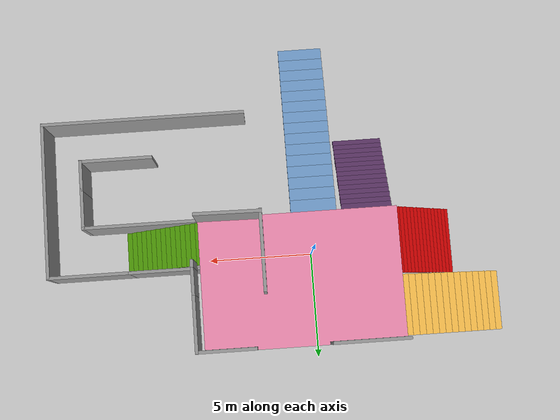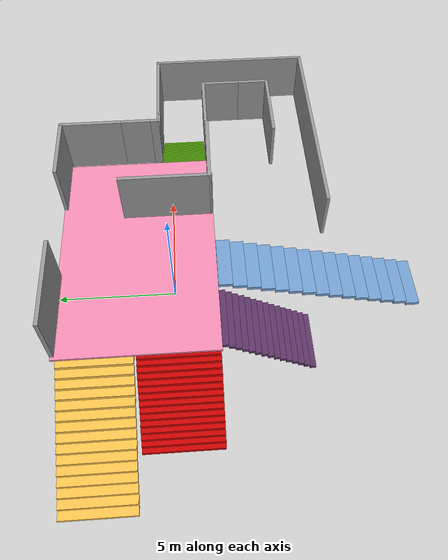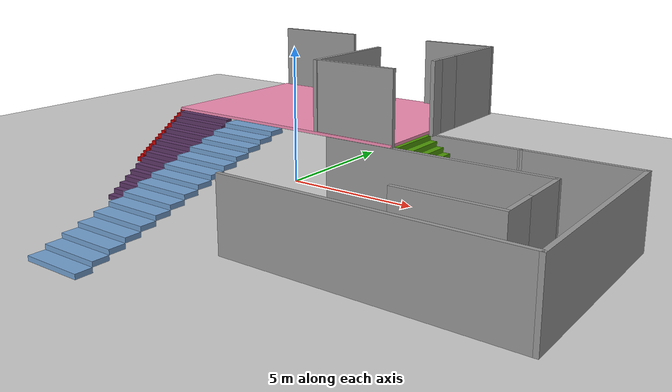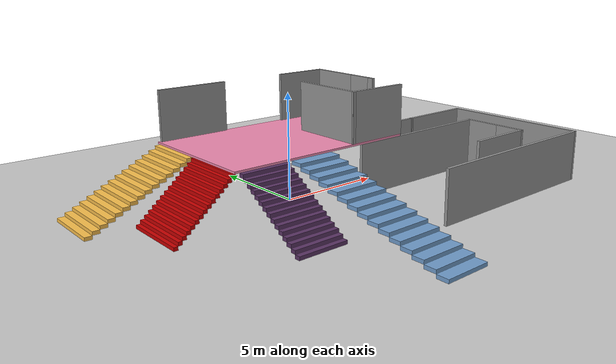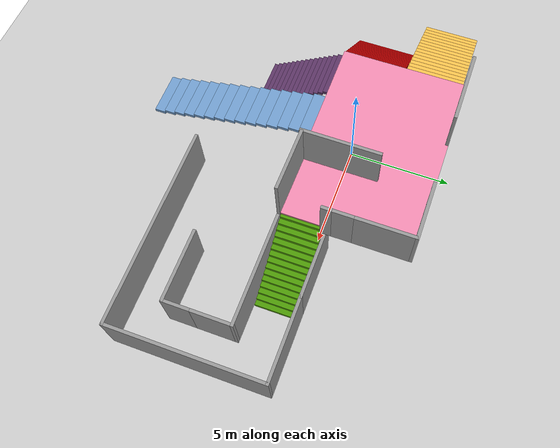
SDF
<sdf version="1.6">
 <world name="default">
  <model name="ground_plane">
   <static>1</static>
   <link name="link">
    <collision name="collision">
     <geometry><plane><normal>0 0 1</normal><size>100 100</size></plane></geometry>
     <surface>
      <contact><collide_bitmask>65535</collide_bitmask></contact>
      <friction><ode><mu>100</mu><mu2>50</mu2></ode></friction>
     </surface>
    </collision>
    <visual name="visual">
     <cast_shadows>0</cast_shadows>
     <geometry><plane><normal>0 0 1</normal><size>100 100</size></plane></geometry>
     <material>
      <script><uri>file://media/materials/scripts/gazebo.material</uri><name>Gazebo/Grey</name></script>
     </material>
    </visual>
   </link>
  </model>
  <model name="stair_test_arena">
   <static>true</static>
   <pose>1.77029 -2.96555 0 0 -0 0</pose>
   <link name="Floor_0">
    <pose>-0.944783 4.29451 2.5 0 -0 0</pose>
    <visual name="Floor_0_Visual_0">
     <pose>-0.2 0 0.05 0 -0 0</pose>
     <geometry><box><size>9.4393 6.29101 0.1</size></box></geometry>
     <material>
      <script><uri>file://media/materials/scripts/gazebo.material</uri><name>Gazebo/Pink</name></script>
      <ambient>0.305882 0.603922 0.0235294 1</ambient>
     </material>
     <meta><layer>1</layer></meta>
    </visual>
    <collision name="Floor_0_Collision_0">
     <geometry><box><size>9.4393 6.29101 0.1</size></box></geometry>
    </collision>
   </link>
   <link name="Stairs_0">
    <visual name="Stairs_0_Visual_0">
     <pose>7.09392 2.32468 0.083333 0 -0 -1.5708</pose>
     <geometry><box><size>2 0.25 0.166667</size></box></geometry>
     <material>
      <script><uri>file://media/materials/scripts/gazebo.material</uri><name>Gazebo/Grey</name></script>
      <ambient>0.305882 0.603922 0.0235294 1</ambient>
     </material>
     <meta><layer>0</layer></meta>
    </visual>
    <collision name="Stairs_0_Collision_0">
     <geometry><box><size>2 0.25 0.166667</size></box></geometry>
     <pose>7.09392 2.32468 0.083333 0 -0 -1.5708</pose>
    </collision>
    <visual name="Stairs_0_Visual_1">
     <pose>6.84392 2.32468 0.25 0 -0 -1.5708</pose>
     <geometry><box><size>2 0.25 0.166667</size></box></geometry>
     <material>
      <script><uri>file://media/materials/scripts/gazebo.material</uri><name>Gazebo/Grey</name></script>
      <ambient>0.305882 0.603922 0.0235294 1</ambient>
     </material>
     <meta><layer>0</layer></meta>
    </visual>
    <collision name="Stairs_0_Collision_1">
     <geometry><box><size>2 0.25 0.166667</size></box></geometry>
     <pose>6.84392 2.32468 0.25 0 -0 -1.5708</pose>
    </collision>
    <visual name="Stairs_0_Visual_2">
     <pose>6.59392 2.32468 0.416667 0 -0 -1.5708</pose>
     <geometry><box><size>2 0.25 0.166667</size></box></geometry>
     <material>
      <script><uri>file://media/materials/scripts/gazebo.material</uri><name>Gazebo/Grey</name></script>
      <ambient>0.305882 0.603922 0.0235294 1</ambient>
     </material>
     <meta><layer>0</layer></meta>
    </visual>
    <collision name="Stairs_0_Collision_2">
     <geometry><box><size>2 0.25 0.166667</size></box></geometry>
     <pose>6.59392 2.32468 0.416667 0 -0 -1.5708</pose>
    </collision>
    <visual name="Stairs_0_Visual_3">
     <pose>6.34392 2.32468 0.583333 0 -0 -1.5708</pose>
     <geometry><box><size>2 0.25 0.166667</size></box></geometry>
     <material>
      <script><uri>file://media/materials/scripts/gazebo.material</uri><name>Gazebo/Grey</name></script>
      <ambient>0.305882 0.603922 0.0235294 1</ambient>
     </material>
     <meta><layer>0</layer></meta>
    </visual>
    <collision name="Stairs_0_Collision_3">
     <geometry><box><size>2 0.25 0.166667</size></box></geometry>
     <pose>6.34392 2.32468 0.583333 0 -0 -1.5708</pose>
    </collision>
    <visual name="Stairs_0_Visual_4">
     <pose>6.09392 2.32468 0.75 0 -0 -1.5708</pose>
     <geometry><box><size>2 0.25 0.166667</size></box></geometry>
     <material>
      <script><uri>file://media/materials/scripts/gazebo.material</uri><name>Gazebo/Grey</name></script>
      <ambient>0.305882 0.603922 0.0235294 1</ambient>
     </material>
     <meta><layer>0</layer></meta>
    </visual>
    <collision name="Stairs_0_Collision_4">
     <geometry><box><size>2 0.25 0.166667</size></box></geometry>
     <pose>6.09392 2.32468 0.75 0 -0 -1.5708</pose>
    </collision>
    <visual name="Stairs_0_Visual_5">
     <pose>5.84392 2.32468 0.916667 0 -0 -1.5708</pose>
     <geometry><box><size>2 0.25 0.166667</size></box></geometry>
     <material>
      <script><uri>file://media/materials/scripts/gazebo.material</uri><name>Gazebo/Grey</name></script>
      <ambient>0.305882 0.603922 0.0235294 1</ambient>
     </material>
     <meta><layer>0</layer></meta>
    </visual>
    <collision name="Stairs_0_Collision_5">
     <geometry><box><size>2 0.25 0.166667</size></box></geometry>
     <pose>5.84392 2.32468 0.916667 0 -0 -1.5708</pose>
    </collision>
    <visual name="Stairs_0_Visual_6">
     <pose>5.59392 2.32468 1.08333 0 -0 -1.5708</pose>
     <geometry><box><size>2 0.25 0.166667</size></box></geometry>
     <material>
      <script><uri>file://media/materials/scripts/gazebo.material</uri><name>Gazebo/Grey</name></script>
      <ambient>0.305882 0.603922 0.0235294 1</ambient>
     </material>
     <meta><layer>0</layer></meta>
    </visual>
    <collision name="Stairs_0_Collision_6">
     <geometry><box><size>2 0.25 0.166667</size></box></geometry>
     <pose>5.59392 2.32468 1.08333 0 -0 -1.5708</pose>
    </collision>
    <visual name="Stairs_0_Visual_7">
     <pose>5.34392 2.32468 1.25 0 -0 -1.5708</pose>
     <geometry><box><size>2 0.25 0.166667</size></box></geometry>
     <material>
      <script><uri>file://media/materials/scripts/gazebo.material</uri><name>Gazebo/Grey</name></script>
      <ambient>0.305882 0.603922 0.0235294 1</ambient>
     </material>
     <meta><layer>0</layer></meta>
    </visual>
    <collision name="Stairs_0_Collision_7">
     <geometry><box><size>2 0.25 0.166667</size></box></geometry>
     <pose>5.34392 2.32468 1.25 0 -0 -1.5708</pose>
    </collision>
    <visual name="Stairs_0_Visual_8">
     <pose>5.09392 2.32468 1.41667 0 -0 -1.5708</pose>
     <geometry><box><size>2 0.25 0.166667</size></box></geometry>
     <material>
      <script><uri>file://media/materials/scripts/gazebo.material</uri><name>Gazebo/Grey</name></script>
      <ambient>0.305882 0.603922 0.0235294 1</ambient>
     </material>
     <meta><layer>0</layer></meta>
    </visual>
    <collision name="Stairs_0_Collision_8">
     <geometry><box><size>2 0.25 0.166667</size></box></geometry>
     <pose>5.09392 2.32468 1.41667 0 -0 -1.5708</pose>
    </collision>
    <visual name="Stairs_0_Visual_9">
     <pose>4.84392 2.32468 1.58333 0 -0 -1.5708</pose>
     <geometry><box><size>2 0.25 0.166667</size></box></geometry>
     <material>
      <script><uri>file://media/materials/scripts/gazebo.material</uri><name>Gazebo/Grey</name></script>
      <ambient>0.305882 0.603922 0.0235294 1</ambient>
     </material>
     <meta><layer>0</layer></meta>
    </visual>
    <collision name="Stairs_0_Collision_9">
     <geometry><box><size>2 0.25 0.166667</size></box></geometry>
     <pose>4.84392 2.32468 1.58333 0 -0 -1.5708</pose>
    </collision>
    <visual name="Stairs_0_Visual_10">
     <pose>4.59392 2.32468 1.75 0 -0 -1.5708</pose>
     <geometry><box><size>2 0.25 0.166667</size></box></geometry>
     <material>
      <script><uri>file://media/materials/scripts/gazebo.material</uri><name>Gazebo/Grey</name></script>
      <ambient>0.305882 0.603922 0.0235294 1</ambient>
     </material>
     <meta><layer>0</layer></meta>
    </visual>
    <collision name="Stairs_0_Collision_10">
     <geometry><box><size>2 0.25 0.166667</size></box></geometry>
     <pose>4.59392 2.32468 1.75 0 -0 -1.5708</pose>
    </collision>
    <visual name="Stairs_0_Visual_11">
     <pose>4.34392 2.32468 1.91667 0 -0 -1.5708</pose>
     <geometry><box><size>2 0.25 0.166667</size></box></geometry>
     <material>
      <script><uri>file://media/materials/scripts/gazebo.material</uri><name>Gazebo/Grey</name></script>
      <ambient>0.305882 0.603922 0.0235294 1</ambient>
     </material>
     <meta><layer>0</layer></meta>
    </visual>
    <collision name="Stairs_0_Collision_11">
     <geometry><box><size>2 0.25 0.166667</size></box></geometry>
     <pose>4.34392 2.32468 1.91667 0 -0 -1.5708</pose>
    </collision>
    <visual name="Stairs_0_Visual_12">
     <pose>4.09392 2.32468 2.08333 0 -0 -1.5708</pose>
     <geometry><box><size>2 0.25 0.166667</size></box></geometry>
     <material>
      <script><uri>file://media/materials/scripts/gazebo.material</uri><name>Gazebo/Grey</name></script>
      <ambient>0.305882 0.603922 0.0235294 1</ambient>
     </material>
     <meta><layer>0</layer></meta>
    </visual>
    <collision name="Stairs_0_Collision_12">
     <geometry><box><size>2 0.25 0.166667</size></box></geometry>
     <pose>4.09392 2.32468 2.08333 0 -0 -1.5708</pose>
    </collision>
    <visual name="Stairs_0_Visual_13">
     <pose>3.84392 2.32468 2.25 0 -0 -1.5708</pose>
     <geometry><box><size>2 0.25 0.166667</size></box></geometry>
     <material>
      <script><uri>file://media/materials/scripts/gazebo.material</uri><name>Gazebo/Grey</name></script>
      <ambient>0.305882 0.603922 0.0235294 1</ambient>
     </material>
     <meta><layer>0</layer></meta>
    </visual>
    <collision name="Stairs_0_Collision_13">
     <geometry><box><size>2 0.25 0.166667</size></box></geometry>
     <pose>3.84392 2.32468 2.25 0 -0 -1.5708</pose>
    </collision>
    <visual name="Stairs_0_Visual_14">
     <pose>3.59392 2.32468 2.41667 0 -0 -1.5708</pose>
     <geometry><box><size>2 0.25 0.166667</size></box></geometry>
     <material>
      <script><uri>file://media/materials/scripts/gazebo.material</uri><name>Gazebo/Grey</name></script>
      <ambient>0.305882 0.603922 0.0235294 1</ambient>
     </material>
     <meta><layer>0</layer></meta>
    </visual>
    <collision name="Stairs_0_Collision_14">
     <geometry><box><size>2 0.25 0.166667</size></box></geometry>
     <pose>3.59392 2.32468 2.41667 0 -0 -1.5708</pose>
    </collision>
   </link>
   <link name="Stairs_10">
    <visual name="Stairs_10_Visual_0">
     <pose>-4.44039 -2.47936 0.083333 0 -0 -3.14159</pose>
     <geometry><box><size>2.38 0.25 0.166667</size></box></geometry>
     <material>
      <script><uri>file://media/materials/scripts/gazebo.material</uri><name>Gazebo/Grey</name></script>
      <ambient>0.360784 0.207843 0.4 1</ambient>
     </material>
     <meta><layer>0</layer></meta>
    </visual>
    <collision name="Stairs_10_Collision_0">
     <geometry><box><size>2.38 0.25 0.166667</size></box></geometry>
     <pose>-4.44039 -2.47936 0.083333 0 -0 -3.14159</pose>
    </collision>
    <visual name="Stairs_10_Visual_1">
     <pose>-4.44039 -2.22936 0.25 0 -0 -3.14159</pose>
     <geometry><box><size>2.38 0.25 0.166667</size></box></geometry>
     <material>
      <script><uri>file://media/materials/scripts/gazebo.material</uri><name>Gazebo/Grey</name></script>
      <ambient>0.360784 0.207843 0.4 1</ambient>
     </material>
     <meta><layer>0</layer></meta>
    </visual>
    <collision name="Stairs_10_Collision_1">
     <geometry><box><size>2.38 0.25 0.166667</size></box></geometry>
     <pose>-4.44039 -2.22936 0.25 0 -0 -3.14159</pose>
    </collision>
    <visual name="Stairs_10_Visual_2">
     <pose>-4.44039 -1.97936 0.416667 0 -0 -3.14159</pose>
     <geometry><box><size>2.38 0.25 0.166667</size></box></geometry>
     <material>
      <script><uri>file://media/materials/scripts/gazebo.material</uri><name>Gazebo/Grey</name></script>
      <ambient>0.360784 0.207843 0.4 1</ambient>
     </material>
     <meta><layer>0</layer></meta>
    </visual>
    <collision name="Stairs_10_Collision_2">
     <geometry><box><size>2.38 0.25 0.166667</size></box></geometry>
     <pose>-4.44039 -1.97936 0.416667 0 -0 -3.14159</pose>
    </collision>
    <visual name="Stairs_10_Visual_3">
     <pose>-4.44039 -1.72936 0.583333 0 -0 -3.14159</pose>
     <geometry><box><size>2.38 0.25 0.166667</size></box></geometry>
     <material>
      <script><uri>file://media/materials/scripts/gazebo.material</uri><name>Gazebo/Grey</name></script>
      <ambient>0.360784 0.207843 0.4 1</ambient>
     </material>
     <meta><layer>0</layer></meta>
    </visual>
    <collision name="Stairs_10_Collision_3">
     <geometry><box><size>2.38 0.25 0.166667</size></box></geometry>
     <pose>-4.44039 -1.72936 0.583333 0 -0 -3.14159</pose>
    </collision>
    <visual name="Stairs_10_Visual_4">
     <pose>-4.44039 -1.47936 0.75 0 -0 -3.14159</pose>
     <geometry><box><size>2.38 0.25 0.166667</size></box></geometry>
     <material>
      <script><uri>file://media/materials/scripts/gazebo.material</uri><name>Gazebo/Grey</name></script>
      <ambient>0.360784 0.207843 0.4 1</ambient>
     </material>
     <meta><layer>0</layer></meta>
    </visual>
    <collision name="Stairs_10_Collision_4">
     <geometry><box><size>2.38 0.25 0.166667</size></box></geometry>
     <pose>-4.44039 -1.47936 0.75 0 -0 -3.14159</pose>
    </collision>
    <visual name="Stairs_10_Visual_5">
     <pose>-4.44039 -1.22936 0.916667 0 -0 -3.14159</pose>
     <geometry><box><size>2.38 0.25 0.166667</size></box></geometry>
     <material>
      <script><uri>file://media/materials/scripts/gazebo.material</uri><name>Gazebo/Grey</name></script>
      <ambient>0.360784 0.207843 0.4 1</ambient>
     </material>
     <meta><layer>0</layer></meta>
    </visual>
    <collision name="Stairs_10_Collision_5">
     <geometry><box><size>2.38 0.25 0.166667</size></box></geometry>
     <pose>-4.44039 -1.22936 0.916667 0 -0 -3.14159</pose>
    </collision>
    <visual name="Stairs_10_Visual_6">
     <pose>-4.44039 -0.979357 1.08333 0 -0 -3.14159</pose>
     <geometry><box><size>2.38 0.25 0.166667</size></box></geometry>
     <material>
      <script><uri>file://media/materials/scripts/gazebo.material</uri><name>Gazebo/Grey</name></script>
      <ambient>0.360784 0.207843 0.4 1</ambient>
     </material>
     <meta><layer>0</layer></meta>
    </visual>
    <collision name="Stairs_10_Collision_6">
     <geometry><box><size>2.38 0.25 0.166667</size></box></geometry>
     <pose>-4.44039 -0.979357 1.08333 0 -0 -3.14159</pose>
    </collision>
    <visual name="Stairs_10_Visual_7">
     <pose>-4.44039 -0.729357 1.25 0 -0 -3.14159</pose>
     <geometry><box><size>2.38 0.25 0.166667</size></box></geometry>
     <material>
      <script><uri>file://media/materials/scripts/gazebo.material</uri><name>Gazebo/Grey</name></script>
      <ambient>0.360784 0.207843 0.4 1</ambient>
     </material>
     <meta><layer>0</layer></meta>
    </visual>
    <collision name="Stairs_10_Collision_7">
     <geometry><box><size>2.38 0.25 0.166667</size></box></geometry>
     <pose>-4.44039 -0.729357 1.25 0 -0 -3.14159</pose>
    </collision>
    <visual name="Stairs_10_Visual_8">
     <pose>-4.44039 -0.479357 1.41667 0 -0 -3.14159</pose>
     <geometry><box><size>2.38 0.25 0.166667</size></box></geometry>
     <material>
      <script><uri>file://media/materials/scripts/gazebo.material</uri><name>Gazebo/Grey</name></script>
      <ambient>0.360784 0.207843 0.4 1</ambient>
     </material>
     <meta><layer>0</layer></meta>
    </visual>
    <collision name="Stairs_10_Collision_8">
     <geometry><box><size>2.38 0.25 0.166667</size></box></geometry>
     <pose>-4.44039 -0.479357 1.41667 0 -0 -3.14159</pose>
    </collision>
    <visual name="Stairs_10_Visual_9">
     <pose>-4.44039 -0.229357 1.58333 0 -0 -3.14159</pose>
     <geometry><box><size>2.38 0.25 0.166667</size></box></geometry>
     <material>
      <script><uri>file://media/materials/scripts/gazebo.material</uri><name>Gazebo/Grey</name></script>
      <ambient>0.360784 0.207843 0.4 1</ambient>
     </material>
     <meta><layer>0</layer></meta>
    </visual>
    <collision name="Stairs_10_Collision_9">
     <geometry><box><size>2.38 0.25 0.166667</size></box></geometry>
     <pose>-4.44039 -0.229357 1.58333 0 -0 -3.14159</pose>
    </collision>
    <visual name="Stairs_10_Visual_10">
     <pose>-4.44039 0.020643 1.75 0 -0 -3.14159</pose>
     <geometry><box><size>2.38 0.25 0.166667</size></box></geometry>
     <material>
      <script><uri>file://media/materials/scripts/gazebo.material</uri><name>Gazebo/Grey</name></script>
      <ambient>0.360784 0.207843 0.4 1</ambient>
     </material>
     <meta><layer>0</layer></meta>
    </visual>
    <collision name="Stairs_10_Collision_10">
     <geometry><box><size>2.38 0.25 0.166667</size></box></geometry>
     <pose>-4.44039 0.020643 1.75 0 -0 -3.14159</pose>
    </collision>
    <visual name="Stairs_10_Visual_11">
     <pose>-4.44039 0.270643 1.91667 0 -0 -3.14159</pose>
     <geometry><box><size>2.38 0.25 0.166667</size></box></geometry>
     <material>
      <script><uri>file://media/materials/scripts/gazebo.material</uri><name>Gazebo/Grey</name></script>
      <ambient>0.360784 0.207843 0.4 1</ambient>
     </material>
     <meta><layer>0</layer></meta>
    </visual>
    <collision name="Stairs_10_Collision_11">
     <geometry><box><size>2.38 0.25 0.166667</size></box></geometry>
     <pose>-4.44039 0.270643 1.91667 0 -0 -3.14159</pose>
    </collision>
    <visual name="Stairs_10_Visual_12">
     <pose>-4.44039 0.520643 2.08333 0 -0 -3.14159</pose>
     <geometry><box><size>2.38 0.25 0.166667</size></box></geometry>
     <material>
      <script><uri>file://media/materials/scripts/gazebo.material</uri><name>Gazebo/Grey</name></script>
      <ambient>0.360784 0.207843 0.4 1</ambient>
     </material>
     <meta><layer>0</layer></meta>
    </visual>
    <collision name="Stairs_10_Collision_12">
     <geometry><box><size>2.38 0.25 0.166667</size></box></geometry>
     <pose>-4.44039 0.520643 2.08333 0 -0 -3.14159</pose>
    </collision>
    <visual name="Stairs_10_Visual_13">
     <pose>-4.44039 0.770643 2.25 0 -0 -3.14159</pose>
     <geometry><box><size>2.38 0.25 0.166667</size></box></geometry>
     <material>
      <script><uri>file://media/materials/scripts/gazebo.material</uri><name>Gazebo/Grey</name></script>
      <ambient>0.360784 0.207843 0.4 1</ambient>
     </material>
     <meta><layer>0</layer></meta>
    </visual>
    <collision name="Stairs_10_Collision_13">
     <geometry><box><size>2.38 0.25 0.166667</size></box></geometry>
     <pose>-4.44039 0.770643 2.25 0 -0 -3.14159</pose>
    </collision>
    <visual name="Stairs_10_Visual_14">
     <pose>-4.44039 1.02064 2.41667 0 -0 -3.14159</pose>
     <geometry><box><size>2.38 0.25 0.166667</size></box></geometry>
     <material>
      <script><uri>file://media/materials/scripts/gazebo.material</uri><name>Gazebo/Grey</name></script>
      <ambient>0.360784 0.207843 0.4 1</ambient>
     </material>
     <meta><layer>0</layer></meta>
    </visual>
    <collision name="Stairs_10_Collision_14">
     <geometry><box><size>2.38 0.25 0.166667</size></box></geometry>
     <pose>-4.44039 1.02064 2.41667 0 -0 -3.14159</pose>
    </collision>
   </link>
   <link name="Stairs_3">
    <visual name="Stairs_3_Visual_0">
     <pose>-10.6336 5.83002 0.083333 0 -0 1.5708</pose>
     <geometry><box><size>2.86201 0.333333 0.166667</size></box></geometry>
     <material>
      <script><uri>file://media/materials/scripts/gazebo.material</uri><name>Gazebo/Grey</name></script>
      <ambient>1 0.764706 0.305882 1</ambient>
     </material>
     <meta><layer>0</layer></meta>
    </visual>
    <collision name="Stairs_3_Collision_0">
     <geometry><box><size>2.86201 0.333333 0.166667</size></box></geometry>
     <pose>-10.6336 5.83002 0.083333 0 -0 1.5708</pose>
    </collision>
    <visual name="Stairs_3_Visual_1">
     <pose>-10.3003 5.83002 0.25 0 -0 1.5708</pose>
     <geometry><box><size>2.86201 0.333333 0.166667</size></box></geometry>
     <material>
      <script><uri>file://media/materials/scripts/gazebo.material</uri><name>Gazebo/Grey</name></script>
      <ambient>1 0.764706 0.305882 1</ambient>
     </material>
     <meta><layer>0</layer></meta>
    </visual>
    <collision name="Stairs_3_Collision_1">
     <geometry><box><size>2.86201 0.333333 0.166667</size></box></geometry>
     <pose>-10.3003 5.83002 0.25 0 -0 1.5708</pose>
    </collision>
    <visual name="Stairs_3_Visual_2">
     <pose>-9.96695 5.83002 0.416667 0 -0 1.5708</pose>
     <geometry><box><size>2.86201 0.333333 0.166667</size></box></geometry>
     <material>
      <script><uri>file://media/materials/scripts/gazebo.material</uri><name>Gazebo/Grey</name></script>
      <ambient>1 0.764706 0.305882 1</ambient>
     </material>
     <meta><layer>0</layer></meta>
    </visual>
    <collision name="Stairs_3_Collision_2">
     <geometry><box><size>2.86201 0.333333 0.166667</size></box></geometry>
     <pose>-9.96695 5.83002 0.416667 0 -0 1.5708</pose>
    </collision>
    <visual name="Stairs_3_Visual_3">
     <pose>-9.63362 5.83002 0.583333 0 -0 1.5708</pose>
     <geometry><box><size>2.86201 0.333333 0.166667</size></box></geometry>
     <material>
      <script><uri>file://media/materials/scripts/gazebo.material</uri><name>Gazebo/Grey</name></script>
      <ambient>1 0.764706 0.305882 1</ambient>
     </material>
     <meta><layer>0</layer></meta>
    </visual>
    <collision name="Stairs_3_Collision_3">
     <geometry><box><size>2.86201 0.333333 0.166667</size></box></geometry>
     <pose>-9.63362 5.83002 0.583333 0 -0 1.5708</pose>
    </collision>
    <visual name="Stairs_3_Visual_4">
     <pose>-9.30028 5.83002 0.75 0 -0 1.5708</pose>
     <geometry><box><size>2.86201 0.333333 0.166667</size></box></geometry>
     <material>
      <script><uri>file://media/materials/scripts/gazebo.material</uri><name>Gazebo/Grey</name></script>
      <ambient>1 0.764706 0.305882 1</ambient>
     </material>
     <meta><layer>0</layer></meta>
    </visual>
    <collision name="Stairs_3_Collision_4">
     <geometry><box><size>2.86201 0.333333 0.166667</size></box></geometry>
     <pose>-9.30028 5.83002 0.75 0 -0 1.5708</pose>
    </collision>
    <visual name="Stairs_3_Visual_5">
     <pose>-8.96695 5.83002 0.916667 0 -0 1.5708</pose>
     <geometry><box><size>2.86201 0.333333 0.166667</size></box></geometry>
     <material>
      <script><uri>file://media/materials/scripts/gazebo.material</uri><name>Gazebo/Grey</name></script>
      <ambient>1 0.764706 0.305882 1</ambient>
     </material>
     <meta><layer>0</layer></meta>
    </visual>
    <collision name="Stairs_3_Collision_5">
     <geometry><box><size>2.86201 0.333333 0.166667</size></box></geometry>
     <pose>-8.96695 5.83002 0.916667 0 -0 1.5708</pose>
    </collision>
    <visual name="Stairs_3_Visual_6">
     <pose>-8.63362 5.83002 1.08333 0 -0 1.5708</pose>
     <geometry><box><size>2.86201 0.333333 0.166667</size></box></geometry>
     <material>
      <script><uri>file://media/materials/scripts/gazebo.material</uri><name>Gazebo/Grey</name></script>
      <ambient>1 0.764706 0.305882 1</ambient>
     </material>
     <meta><layer>0</layer></meta>
    </visual>
    <collision name="Stairs_3_Collision_6">
     <geometry><box><size>2.86201 0.333333 0.166667</size></box></geometry>
     <pose>-8.63362 5.83002 1.08333 0 -0 1.5708</pose>
    </collision>
    <visual name="Stairs_3_Visual_7">
     <pose>-8.30028 5.83002 1.25 0 -0 1.5708</pose>
     <geometry><box><size>2.86201 0.333333 0.166667</size></box></geometry>
     <material>
      <script><uri>file://media/materials/scripts/gazebo.material</uri><name>Gazebo/Grey</name></script>
      <ambient>1 0.764706 0.305882 1</ambient>
     </material>
     <meta><layer>0</layer></meta>
    </visual>
    <collision name="Stairs_3_Collision_7">
     <geometry><box><size>2.86201 0.333333 0.166667</size></box></geometry>
     <pose>-8.30028 5.83002 1.25 0 -0 1.5708</pose>
    </collision>
    <visual name="Stairs_3_Visual_8">
     <pose>-7.96695 5.83002 1.41667 0 -0 1.5708</pose>
     <geometry><box><size>2.86201 0.333333 0.166667</size></box></geometry>
     <material>
      <script><uri>file://media/materials/scripts/gazebo.material</uri><name>Gazebo/Grey</name></script>
      <ambient>1 0.764706 0.305882 1</ambient>
     </material>
     <meta><layer>0</layer></meta>
    </visual>
    <collision name="Stairs_3_Collision_8">
     <geometry><box><size>2.86201 0.333333 0.166667</size></box></geometry>
     <pose>-7.96695 5.83002 1.41667 0 -0 1.5708</pose>
    </collision>
    <visual name="Stairs_3_Visual_9">
     <pose>-7.63361 5.83002 1.58333 0 -0 1.5708</pose>
     <geometry><box><size>2.86201 0.333333 0.166667</size></box></geometry>
     <material>
      <script><uri>file://media/materials/scripts/gazebo.material</uri><name>Gazebo/Grey</name></script>
      <ambient>1 0.764706 0.305882 1</ambient>
     </material>
     <meta><layer>0</layer></meta>
    </visual>
    <collision name="Stairs_3_Collision_9">
     <geometry><box><size>2.86201 0.333333 0.166667</size></box></geometry>
     <pose>-7.63361 5.83002 1.58333 0 -0 1.5708</pose>
    </collision>
    <visual name="Stairs_3_Visual_10">
     <pose>-7.30028 5.83002 1.75 0 -0 1.5708</pose>
     <geometry><box><size>2.86201 0.333333 0.166667</size></box></geometry>
     <material>
      <script><uri>file://media/materials/scripts/gazebo.material</uri><name>Gazebo/Grey</name></script>
      <ambient>1 0.764706 0.305882 1</ambient>
     </material>
     <meta><layer>0</layer></meta>
    </visual>
    <collision name="Stairs_3_Collision_10">
     <geometry><box><size>2.86201 0.333333 0.166667</size></box></geometry>
     <pose>-7.30028 5.83002 1.75 0 -0 1.5708</pose>
    </collision>
    <visual name="Stairs_3_Visual_11">
     <pose>-6.96695 5.83002 1.91667 0 -0 1.5708</pose>
     <geometry><box><size>2.86201 0.333333 0.166667</size></box></geometry>
     <material>
      <script><uri>file://media/materials/scripts/gazebo.material</uri><name>Gazebo/Grey</name></script>
      <ambient>1 0.764706 0.305882 1</ambient>
     </material>
     <meta><layer>0</layer></meta>
    </visual>
    <collision name="Stairs_3_Collision_11">
     <geometry><box><size>2.86201 0.333333 0.166667</size></box></geometry>
     <pose>-6.96695 5.83002 1.91667 0 -0 1.5708</pose>
    </collision>
    <visual name="Stairs_3_Visual_12">
     <pose>-6.63361 5.83002 2.08333 0 -0 1.5708</pose>
     <geometry><box><size>2.86201 0.333333 0.166667</size></box></geometry>
     <material>
      <script><uri>file://media/materials/scripts/gazebo.material</uri><name>Gazebo/Grey</name></script>
      <ambient>1 0.764706 0.305882 1</ambient>
     </material>
     <meta><layer>0</layer></meta>
    </visual>
    <collision name="Stairs_3_Collision_12">
     <geometry><box><size>2.86201 0.333333 0.166667</size></box></geometry>
     <pose>-6.63361 5.83002 2.08333 0 -0 1.5708</pose>
    </collision>
    <visual name="Stairs_3_Visual_13">
     <pose>-6.30028 5.83002 2.25 0 -0 1.5708</pose>
     <geometry><box><size>2.86201 0.333333 0.166667</size></box></geometry>
     <material>
      <script><uri>file://media/materials/scripts/gazebo.material</uri><name>Gazebo/Grey</name></script>
      <ambient>1 0.764706 0.305882 1</ambient>
     </material>
     <meta><layer>0</layer></meta>
    </visual>
    <collision name="Stairs_3_Collision_13">
     <geometry><box><size>2.86201 0.333333 0.166667</size></box></geometry>
     <pose>-6.30028 5.83002 2.25 0 -0 1.5708</pose>
    </collision>
    <visual name="Stairs_3_Visual_14">
     <pose>-5.96695 5.83002 2.41667 0 -0 1.5708</pose>
     <geometry><box><size>2.86201 0.333333 0.166667</size></box></geometry>
     <material>
      <script><uri>file://media/materials/scripts/gazebo.material</uri><name>Gazebo/Grey</name></script>
      <ambient>1 0.764706 0.305882 1</ambient>
     </material>
     <meta><layer>0</layer></meta>
    </visual>
    <collision name="Stairs_3_Collision_14">
     <geometry><box><size>2.86201 0.333333 0.166667</size></box></geometry>
     <pose>-5.96695 5.83002 2.41667 0 -0 1.5708</pose>
    </collision>
   </link>
   <link name="Stairs_6">
    <visual name="Stairs_6_Visual_0">
     <pose>-8.56681 2.75903 0.083333 0 -0 1.5708</pose>
     <geometry><box><size>3.12802 0.192546 0.166667</size></box></geometry>
     <material>
      <script><uri>file://media/materials/scripts/gazebo.material</uri><name>Gazebo/Grey</name></script>
      <ambient>0.8 0 0 1</ambient>
     </material>
     <meta><layer>0</layer></meta>
    </visual>
    <collision name="Stairs_6_Collision_0">
     <geometry><box><size>3.12802 0.192546 0.166667</size></box></geometry>
     <pose>-8.56681 2.75903 0.083333 0 -0 1.5708</pose>
    </collision>
    <visual name="Stairs_6_Visual_1">
     <pose>-8.37426 2.75903 0.25 0 -0 1.5708</pose>
     <geometry><box><size>3.12802 0.192546 0.166667</size></box></geometry>
     <material>
      <script><uri>file://media/materials/scripts/gazebo.material</uri><name>Gazebo/Grey</name></script>
      <ambient>0.8 0 0 1</ambient>
     </material>
     <meta><layer>0</layer></meta>
    </visual>
    <collision name="Stairs_6_Collision_1">
     <geometry><box><size>3.12802 0.192546 0.166667</size></box></geometry>
     <pose>-8.37426 2.75903 0.25 0 -0 1.5708</pose>
    </collision>
    <visual name="Stairs_6_Visual_2">
     <pose>-8.18172 2.75903 0.416667 0 -0 1.5708</pose>
     <geometry><box><size>3.12802 0.192546 0.166667</size></box></geometry>
     <material>
      <script><uri>file://media/materials/scripts/gazebo.material</uri><name>Gazebo/Grey</name></script>
      <ambient>0.8 0 0 1</ambient>
     </material>
     <meta><layer>0</layer></meta>
    </visual>
    <collision name="Stairs_6_Collision_2">
     <geometry><box><size>3.12802 0.192546 0.166667</size></box></geometry>
     <pose>-8.18172 2.75903 0.416667 0 -0 1.5708</pose>
    </collision>
    <visual name="Stairs_6_Visual_3">
     <pose>-7.98917 2.75903 0.583333 0 -0 1.5708</pose>
     <geometry><box><size>3.12802 0.192546 0.166667</size></box></geometry>
     <material>
      <script><uri>file://media/materials/scripts/gazebo.material</uri><name>Gazebo/Grey</name></script>
      <ambient>0.8 0 0 1</ambient>
     </material>
     <meta><layer>0</layer></meta>
    </visual>
    <collision name="Stairs_6_Collision_3">
     <geometry><box><size>3.12802 0.192546 0.166667</size></box></geometry>
     <pose>-7.98917 2.75903 0.583333 0 -0 1.5708</pose>
    </collision>
    <visual name="Stairs_6_Visual_4">
     <pose>-7.79662 2.75903 0.75 0 -0 1.5708</pose>
     <geometry><box><size>3.12802 0.192546 0.166667</size></box></geometry>
     <material>
      <script><uri>file://media/materials/scripts/gazebo.material</uri><name>Gazebo/Grey</name></script>
      <ambient>0.8 0 0 1</ambient>
     </material>
     <meta><layer>0</layer></meta>
    </visual>
    <collision name="Stairs_6_Collision_4">
     <geometry><box><size>3.12802 0.192546 0.166667</size></box></geometry>
     <pose>-7.79662 2.75903 0.75 0 -0 1.5708</pose>
    </collision>
    <visual name="Stairs_6_Visual_5">
     <pose>-7.60407 2.75903 0.916667 0 -0 1.5708</pose>
     <geometry><box><size>3.12802 0.192546 0.166667</size></box></geometry>
     <material>
      <script><uri>file://media/materials/scripts/gazebo.material</uri><name>Gazebo/Grey</name></script>
      <ambient>0.8 0 0 1</ambient>
     </material>
     <meta><layer>0</layer></meta>
    </visual>
    <collision name="Stairs_6_Collision_5">
     <geometry><box><size>3.12802 0.192546 0.166667</size></box></geometry>
     <pose>-7.60407 2.75903 0.916667 0 -0 1.5708</pose>
    </collision>
    <visual name="Stairs_6_Visual_6">
     <pose>-7.41153 2.75903 1.08333 0 -0 1.5708</pose>
     <geometry><box><size>3.12802 0.192546 0.166667</size></box></geometry>
     <material>
      <script><uri>file://media/materials/scripts/gazebo.material</uri><name>Gazebo/Grey</name></script>
      <ambient>0.8 0 0 1</ambient>
     </material>
     <meta><layer>0</layer></meta>
    </visual>
    <collision name="Stairs_6_Collision_6">
     <geometry><box><size>3.12802 0.192546 0.166667</size></box></geometry>
     <pose>-7.41153 2.75903 1.08333 0 -0 1.5708</pose>
    </collision>
    <visual name="Stairs_6_Visual_7">
     <pose>-7.21898 2.75903 1.25 0 -0 1.5708</pose>
     <geometry><box><size>3.12802 0.192546 0.166667</size></box></geometry>
     <material>
      <script><uri>file://media/materials/scripts/gazebo.material</uri><name>Gazebo/Grey</name></script>
      <ambient>0.8 0 0 1</ambient>
     </material>
     <meta><layer>0</layer></meta>
    </visual>
    <collision name="Stairs_6_Collision_7">
     <geometry><box><size>3.12802 0.192546 0.166667</size></box></geometry>
     <pose>-7.21898 2.75903 1.25 0 -0 1.5708</pose>
    </collision>
    <visual name="Stairs_6_Visual_8">
     <pose>-7.02644 2.75903 1.41667 0 -0 1.5708</pose>
     <geometry><box><size>3.12802 0.192546 0.166667</size></box></geometry>
     <material>
      <script><uri>file://media/materials/scripts/gazebo.material</uri><name>Gazebo/Grey</name></script>
      <ambient>0.8 0 0 1</ambient>
     </material>
     <meta><layer>0</layer></meta>
    </visual>
    <collision name="Stairs_6_Collision_8">
     <geometry><box><size>3.12802 0.192546 0.166667</size></box></geometry>
     <pose>-7.02644 2.75903 1.41667 0 -0 1.5708</pose>
    </collision>
    <visual name="Stairs_6_Visual_9">
     <pose>-6.83389 2.75903 1.58333 0 -0 1.5708</pose>
     <geometry><box><size>3.12802 0.192546 0.166667</size></box></geometry>
     <material>
      <script><uri>file://media/materials/scripts/gazebo.material</uri><name>Gazebo/Grey</name></script>
      <ambient>0.8 0 0 1</ambient>
     </material>
     <meta><layer>0</layer></meta>
    </visual>
    <collision name="Stairs_6_Collision_9">
     <geometry><box><size>3.12802 0.192546 0.166667</size></box></geometry>
     <pose>-6.83389 2.75903 1.58333 0 -0 1.5708</pose>
    </collision>
    <visual name="Stairs_6_Visual_10">
     <pose>-6.64134 2.75903 1.75 0 -0 1.5708</pose>
     <geometry><box><size>3.12802 0.192546 0.166667</size></box></geometry>
     <material>
      <script><uri>file://media/materials/scripts/gazebo.material</uri><name>Gazebo/Grey</name></script>
      <ambient>0.8 0 0 1</ambient>
     </material>
     <meta><layer>0</layer></meta>
    </visual>
    <collision name="Stairs_6_Collision_10">
     <geometry><box><size>3.12802 0.192546 0.166667</size></box></geometry>
     <pose>-6.64134 2.75903 1.75 0 -0 1.5708</pose>
    </collision>
    <visual name="Stairs_6_Visual_11">
     <pose>-6.4488 2.75903 1.91667 0 -0 1.5708</pose>
     <geometry><box><size>3.12802 0.192546 0.166667</size></box></geometry>
     <material>
      <script><uri>file://media/materials/scripts/gazebo.material</uri><name>Gazebo/Grey</name></script>
      <ambient>0.8 0 0 1</ambient>
     </material>
     <meta><layer>0</layer></meta>
    </visual>
    <collision name="Stairs_6_Collision_11">
     <geometry><box><size>3.12802 0.192546 0.166667</size></box></geometry>
     <pose>-6.4488 2.75903 1.91667 0 -0 1.5708</pose>
    </collision>
    <visual name="Stairs_6_Visual_12">
     <pose>-6.25625 2.75903 2.08333 0 -0 1.5708</pose>
     <geometry><box><size>3.12802 0.192546 0.166667</size></box></geometry>
     <material>
      <script><uri>file://media/materials/scripts/gazebo.material</uri><name>Gazebo/Grey</name></script>
      <ambient>0.8 0 0 1</ambient>
     </material>
     <meta><layer>0</layer></meta>
    </visual>
    <collision name="Stairs_6_Collision_12">
     <geometry><box><size>3.12802 0.192546 0.166667</size></box></geometry>
     <pose>-6.25625 2.75903 2.08333 0 -0 1.5708</pose>
    </collision>
    <visual name="Stairs_6_Visual_13">
     <pose>-6.0637 2.75903 2.25 0 -0 1.5708</pose>
     <geometry><box><size>3.12802 0.192546 0.166667</size></box></geometry>
     <material>
      <script><uri>file://media/materials/scripts/gazebo.material</uri><name>Gazebo/Grey</name></script>
      <ambient>0.8 0 0 1</ambient>
     </material>
     <meta><layer>0</layer></meta>
    </visual>
    <collision name="Stairs_6_Collision_13">
     <geometry><box><size>3.12802 0.192546 0.166667</size></box></geometry>
     <pose>-6.0637 2.75903 2.25 0 -0 1.5708</pose>
    </collision>
    <visual name="Stairs_6_Visual_14">
     <pose>-5.87116 2.75903 2.41667 0 -0 1.5708</pose>
     <geometry><box><size>3.12802 0.192546 0.166667</size></box></geometry>
     <material>
      <script><uri>file://media/materials/scripts/gazebo.material</uri><name>Gazebo/Grey</name></script>
      <ambient>0.8 0 0 1</ambient>
     </material>
     <meta><layer>0</layer></meta>
    </visual>
    <collision name="Stairs_6_Collision_14">
     <geometry><box><size>3.12802 0.192546 0.166667</size></box></geometry>
     <pose>-5.87116 2.75903 2.41667 0 -0 1.5708</pose>
    </collision>
   </link>
   <link name="Stairs_8">
    <visual name="Stairs_8_Visual_0">
     <pose>-1.92529 -7.15409 0.083333 0 -0 -3.14159</pose>
     <geometry><box><size>2.16243 0.571865 0.166667</size></box></geometry>
     <material>
      <script><uri>file://media/materials/scripts/gazebo.material</uri><name>Gazebo/Grey</name></script>
      <ambient>0.447059 0.623529 0.811765 1</ambient>
     </material>
     <meta><layer>0</layer></meta>
    </visual>
    <collision name="Stairs_8_Collision_0">
     <geometry><box><size>2.16243 0.571865 0.166667</size></box></geometry>
     <pose>-1.92529 -7.15409 0.083333 0 -0 -3.14159</pose>
    </collision>
    <visual name="Stairs_8_Visual_1">
     <pose>-1.92529 -6.58222 0.25 0 -0 -3.14159</pose>
     <geometry><box><size>2.16243 0.571865 0.166667</size></box></geometry>
     <material>
      <script><uri>file://media/materials/scripts/gazebo.material</uri><name>Gazebo/Grey</name></script>
      <ambient>0.447059 0.623529 0.811765 1</ambient>
     </material>
     <meta><layer>0</layer></meta>
    </visual>
    <collision name="Stairs_8_Collision_1">
     <geometry><box><size>2.16243 0.571865 0.166667</size></box></geometry>
     <pose>-1.92529 -6.58222 0.25 0 -0 -3.14159</pose>
    </collision>
    <visual name="Stairs_8_Visual_2">
     <pose>-1.92529 -6.01036 0.416667 0 -0 -3.14159</pose>
     <geometry><box><size>2.16243 0.571865 0.166667</size></box></geometry>
     <material>
      <script><uri>file://media/materials/scripts/gazebo.material</uri><name>Gazebo/Grey</name></script>
      <ambient>0.447059 0.623529 0.811765 1</ambient>
     </material>
     <meta><layer>0</layer></meta>
    </visual>
    <collision name="Stairs_8_Collision_2">
     <geometry><box><size>2.16243 0.571865 0.166667</size></box></geometry>
     <pose>-1.92529 -6.01036 0.416667 0 -0 -3.14159</pose>
    </collision>
    <visual name="Stairs_8_Visual_3">
     <pose>-1.92529 -5.43849 0.583333 0 -0 -3.14159</pose>
     <geometry><box><size>2.16243 0.571865 0.166667</size></box></geometry>
     <material>
      <script><uri>file://media/materials/scripts/gazebo.material</uri><name>Gazebo/Grey</name></script>
      <ambient>0.447059 0.623529 0.811765 1</ambient>
     </material>
     <meta><layer>0</layer></meta>
    </visual>
    <collision name="Stairs_8_Collision_3">
     <geometry><box><size>2.16243 0.571865 0.166667</size></box></geometry>
     <pose>-1.92529 -5.43849 0.583333 0 -0 -3.14159</pose>
    </collision>
    <visual name="Stairs_8_Visual_4">
     <pose>-1.92529 -4.86662 0.75 0 -0 -3.14159</pose>
     <geometry><box><size>2.16243 0.571865 0.166667</size></box></geometry>
     <material>
      <script><uri>file://media/materials/scripts/gazebo.material</uri><name>Gazebo/Grey</name></script>
      <ambient>0.447059 0.623529 0.811765 1</ambient>
     </material>
     <meta><layer>0</layer></meta>
    </visual>
    <collision name="Stairs_8_Collision_4">
     <geometry><box><size>2.16243 0.571865 0.166667</size></box></geometry>
     <pose>-1.92529 -4.86662 0.75 0 -0 -3.14159</pose>
    </collision>
    <visual name="Stairs_8_Visual_5">
     <pose>-1.92529 -4.29476 0.916667 0 -0 -3.14159</pose>
     <geometry><box><size>2.16243 0.571865 0.166667</size></box></geometry>
     <material>
      <script><uri>file://media/materials/scripts/gazebo.material</uri><name>Gazebo/Grey</name></script>
      <ambient>0.447059 0.623529 0.811765 1</ambient>
     </material>
     <meta><layer>0</layer></meta>
    </visual>
    <collision name="Stairs_8_Collision_5">
     <geometry><box><size>2.16243 0.571865 0.166667</size></box></geometry>
     <pose>-1.92529 -4.29476 0.916667 0 -0 -3.14159</pose>
    </collision>
    <visual name="Stairs_8_Visual_6">
     <pose>-1.92529 -3.72289 1.08333 0 -0 -3.14159</pose>
     <geometry><box><size>2.16243 0.571865 0.166667</size></box></geometry>
     <material>
      <script><uri>file://media/materials/scripts/gazebo.material</uri><name>Gazebo/Grey</name></script>
      <ambient>0.447059 0.623529 0.811765 1</ambient>
     </material>
     <meta><layer>0</layer></meta>
    </visual>
    <collision name="Stairs_8_Collision_6">
     <geometry><box><size>2.16243 0.571865 0.166667</size></box></geometry>
     <pose>-1.92529 -3.72289 1.08333 0 -0 -3.14159</pose>
    </collision>
    <visual name="Stairs_8_Visual_7">
     <pose>-1.92529 -3.15103 1.25 0 -0 -3.14159</pose>
     <geometry><box><size>2.16243 0.571865 0.166667</size></box></geometry>
     <material>
      <script><uri>file://media/materials/scripts/gazebo.material</uri><name>Gazebo/Grey</name></script>
      <ambient>0.447059 0.623529 0.811765 1</ambient>
     </material>
     <meta><layer>0</layer></meta>
    </visual>
    <collision name="Stairs_8_Collision_7">
     <geometry><box><size>2.16243 0.571865 0.166667</size></box></geometry>
     <pose>-1.92529 -3.15103 1.25 0 -0 -3.14159</pose>
    </collision>
    <visual name="Stairs_8_Visual_8">
     <pose>-1.92529 -2.57917 1.41667 0 -0 -3.14159</pose>
     <geometry><box><size>2.16243 0.571865 0.166667</size></box></geometry>
     <material>
      <script><uri>file://media/materials/scripts/gazebo.material</uri><name>Gazebo/Grey</name></script>
      <ambient>0.447059 0.623529 0.811765 1</ambient>
     </material>
     <meta><layer>0</layer></meta>
    </visual>
    <collision name="Stairs_8_Collision_8">
     <geometry><box><size>2.16243 0.571865 0.166667</size></box></geometry>
     <pose>-1.92529 -2.57917 1.41667 0 -0 -3.14159</pose>
    </collision>
    <visual name="Stairs_8_Visual_9">
     <pose>-1.92529 -2.0073 1.58333 0 -0 -3.14159</pose>
     <geometry><box><size>2.16243 0.571865 0.166667</size></box></geometry>
     <material>
      <script><uri>file://media/materials/scripts/gazebo.material</uri><name>Gazebo/Grey</name></script>
      <ambient>0.447059 0.623529 0.811765 1</ambient>
     </material>
     <meta><layer>0</layer></meta>
    </visual>
    <collision name="Stairs_8_Collision_9">
     <geometry><box><size>2.16243 0.571865 0.166667</size></box></geometry>
     <pose>-1.92529 -2.0073 1.58333 0 -0 -3.14159</pose>
    </collision>
    <visual name="Stairs_8_Visual_10">
     <pose>-1.92529 -1.43543 1.75 0 -0 -3.14159</pose>
     <geometry><box><size>2.16243 0.571865 0.166667</size></box></geometry>
     <material>
      <script><uri>file://media/materials/scripts/gazebo.material</uri><name>Gazebo/Grey</name></script>
      <ambient>0.447059 0.623529 0.811765 1</ambient>
     </material>
     <meta><layer>0</layer></meta>
    </visual>
    <collision name="Stairs_8_Collision_10">
     <geometry><box><size>2.16243 0.571865 0.166667</size></box></geometry>
     <pose>-1.92529 -1.43543 1.75 0 -0 -3.14159</pose>
    </collision>
    <visual name="Stairs_8_Visual_11">
     <pose>-1.92529 -0.863569 1.91667 0 -0 -3.14159</pose>
     <geometry><box><size>2.16243 0.571865 0.166667</size></box></geometry>
     <material>
      <script><uri>file://media/materials/scripts/gazebo.material</uri><name>Gazebo/Grey</name></script>
      <ambient>0.447059 0.623529 0.811765 1</ambient>
     </material>
     <meta><layer>0</layer></meta>
    </visual>
    <collision name="Stairs_8_Collision_11">
     <geometry><box><size>2.16243 0.571865 0.166667</size></box></geometry>
     <pose>-1.92529 -0.863569 1.91667 0 -0 -3.14159</pose>
    </collision>
    <visual name="Stairs_8_Visual_12">
     <pose>-1.92529 -0.291704 2.08333 0 -0 -3.14159</pose>
     <geometry><box><size>2.16243 0.571865 0.166667</size></box></geometry>
     <material>
      <script><uri>file://media/materials/scripts/gazebo.material</uri><name>Gazebo/Grey</name></script>
      <ambient>0.447059 0.623529 0.811765 1</ambient>
     </material>
     <meta><layer>0</layer></meta>
    </visual>
    <collision name="Stairs_8_Collision_12">
     <geometry><box><size>2.16243 0.571865 0.166667</size></box></geometry>
     <pose>-1.92529 -0.291704 2.08333 0 -0 -3.14159</pose>
    </collision>
    <visual name="Stairs_8_Visual_13">
     <pose>-1.92529 0.280161 2.25 0 -0 -3.14159</pose>
     <geometry><box><size>2.16243 0.571865 0.166667</size></box></geometry>
     <material>
      <script><uri>file://media/materials/scripts/gazebo.material</uri><name>Gazebo/Grey</name></script>
      <ambient>0.447059 0.623529 0.811765 1</ambient>
     </material>
     <meta><layer>0</layer></meta>
    </visual>
    <collision name="Stairs_8_Collision_13">
     <geometry><box><size>2.16243 0.571865 0.166667</size></box></geometry>
     <pose>-1.92529 0.280161 2.25 0 -0 -3.14159</pose>
    </collision>
    <visual name="Stairs_8_Visual_14">
     <pose>-1.92529 0.852027 2.41667 0 -0 -3.14159</pose>
     <geometry><box><size>2.16243 0.571865 0.166667</size></box></geometry>
     <material>
      <script><uri>file://media/materials/scripts/gazebo.material</uri><name>Gazebo/Grey</name></script>
      <ambient>0.447059 0.623529 0.811765 1</ambient>
     </material>
     <meta><layer>0</layer></meta>
    </visual>
    <collision name="Stairs_8_Collision_14">
     <geometry><box><size>2.16243 0.571865 0.166667</size></box></geometry>
     <pose>-1.92529 0.852027 2.41667 0 -0 -3.14159</pose>
    </collision>
   </link>
   <link name="Wall_10">
    <collision name="Wall_10_Collision">
     <geometry><box><size>4 0.15 2.5</size></box></geometry>
     <pose>0 0 1.25 0 -0 0</pose>
    </collision>
    <visual name="Wall_10_Visual">
     <pose>0 0 1.25 0 -0 0</pose>
     <geometry><box><size>4 0.15 2.5</size></box></geometry>
     <material>
      <script><uri>file://media/materials/scripts/gazebo.material</uri><name>Gazebo/Grey</name></script>
      <ambient>1 1 1 1</ambient>
     </material>
     <meta><layer>0</layer></meta>
    </visual>
    <pose>8.80028 3.45952 0 0 -0 3.14159</pose>
   </link>
   <link name="Wall_25">
    <collision name="Wall_25_Collision">
     <geometry><box><size>3.10621 0.15 2.5</size></box></geometry>
     <pose>0 0 1.25 0 -0 0</pose>
    </collision>
    <visual name="Wall_25_Visual">
     <pose>0 0 1.25 0 -0 0</pose>
     <geometry><box><size>3.10621 0.15 2.5</size></box></geometry>
     <material>
      <script><uri>file://media/materials/scripts/gazebo.material</uri><name>Gazebo/Grey</name></script>
      <ambient>1 1 1 1</ambient>
     </material>
     <meta><layer>1</layer></meta>
    </visual>
    <pose>2.06089 1.24526 2.5 0 -0 3.12791</pose>
   </link>
   <link name="Wall_26">
    <collision name="Wall_26_Collision">
     <geometry><box><size>3.75 0.15 2.5</size></box></geometry>
     <pose>0 0 1.25 0 -0 0</pose>
    </collision>
    <visual name="Wall_26_Visual">
     <pose>0 0 1.25 0 -0 0</pose>
     <geometry><box><size>3.75 0.15 2.5</size></box></geometry>
     <material>
      <script><uri>file://media/materials/scripts/gazebo.material</uri><name>Gazebo/Grey</name></script>
      <ambient>1 1 1 1</ambient>
     </material>
     <meta><layer>1</layer></meta>
    </visual>
    <pose>0.582923 3.02503 2.5 0 -0 1.5708</pose>
   </link>
   <link name="Wall_28">
    <collision name="Wall_28_Collision">
     <geometry><box><size>1.25 0.15 2.5</size></box></geometry>
     <pose>0 0 1.25 0 -0 0</pose>
    </collision>
    <visual name="Wall_28_Visual">
     <pose>0 0 1.25 0 -0 0</pose>
     <geometry><box><size>1.25 0.15 2.5</size></box></geometry>
     <material>
      <script><uri>file://media/materials/scripts/gazebo.material</uri><name>Gazebo/Grey</name></script>
      <ambient>1 1 1 1</ambient>
     </material>
     <meta><layer>1</layer></meta>
    </visual>
    <pose>3.78022 4.21502 2.5 0 -0 -1.5708</pose>
   </link>
   <link name="Wall_29">
    <collision name="Wall_29_Collision">
     <geometry><box><size>0.5 0.15 2.5</size></box></geometry>
     <pose>0 0 1.25 0 -0 0</pose>
    </collision>
    <visual name="Wall_29_Visual">
     <pose>0 0 1.25 0 -0 0</pose>
     <geometry><box><size>0.5 0.15 2.5</size></box></geometry>
     <material>
      <script><uri>file://media/materials/scripts/gazebo.material</uri><name>Gazebo/Grey</name></script>
      <ambient>1 1 1 1</ambient>
     </material>
     <meta><layer>1</layer></meta>
    </visual>
    <pose>3.78022 3.49002 2.5 0 -0 -1.5708</pose>
   </link>
   <link name="Wall_3">
    <collision name="Wall_3_Collision">
     <geometry><box><size>3.5 0.15 2.5</size></box></geometry>
     <pose>0 0 1.25 0 -0 0</pose>
    </collision>
    <visual name="Wall_3_Visual">
     <pose>0 0 1.25 0 -0 0</pose>
     <geometry><box><size>3.5 0.15 2.5</size></box></geometry>
     <material>
      <script><uri>file://media/materials/scripts/gazebo.material</uri><name>Gazebo/Grey</name></script>
      <ambient>1 1 1 1</ambient>
     </material>
     <meta><layer>0</layer></meta>
    </visual>
    <pose>7.30028 -1.99049 0 0 -0 0</pose>
   </link>
   <link name="Wall_32">
    <collision name="Wall_32_Collision">
     <geometry><box><size>3.50914 0.15 2.5</size></box></geometry>
     <pose>0 0 1.25 0 -0 0</pose>
    </collision>
    <visual name="Wall_32_Visual">
     <pose>0 0 1.25 0 -0 0</pose>
     <geometry><box><size>3.50914 0.15 2.5</size></box></geometry>
     <material>
      <script><uri>file://media/materials/scripts/gazebo.material</uri><name>Gazebo/Grey</name></script>
      <ambient>1 1 1 1</ambient>
     </material>
     <meta><layer>0</layer></meta>
    </visual>
    <pose>5.19571 3.4605 0 0 -0 -0.000584</pose>
   </link>
   <link name="Wall_34">
    <collision name="Wall_34_Collision">
     <geometry><box><size>2.75 0.15 2.5</size></box></geometry>
     <pose>0 0 1.25 0 -0 0</pose>
    </collision>
    <visual name="Wall_34_Visual">
     <pose>0 0 1.25 0 -0 0</pose>
     <geometry><box><size>2.75 0.15 2.5</size></box></geometry>
     <material>
      <script><uri>file://media/materials/scripts/gazebo.material</uri><name>Gazebo/Grey</name></script>
      <ambient>1 1 1 1</ambient>
     </material>
     <meta><layer>1</layer></meta>
    </visual>
    <pose>3.78022 6.06502 2.5 0 -0 1.5708</pose>
   </link>
   <link name="Wall_37">
    <collision name="Wall_37_Collision">
     <geometry><box><size>3.5 0.15 2.5</size></box></geometry>
     <pose>0 0 1.25 0 -0 0</pose>
    </collision>
    <visual name="Wall_37_Visual">
     <pose>0 0 1.25 0 -0 0</pose>
     <geometry><box><size>3.5 0.15 2.5</size></box></geometry>
     <material>
      <script><uri>file://media/materials/scripts/gazebo.material</uri><name>Gazebo/Grey</name></script>
      <ambient>1 1 1 1</ambient>
     </material>
     <meta><layer>1</layer></meta>
    </visual>
    <pose>-3.99478 7.36502 2.5 0 -0 3.14159</pose>
   </link>
   <link name="Wall_39">
    <collision name="Wall_39_Collision">
     <geometry><box><size>2.75 0.15 2.5</size></box></geometry>
     <pose>0 0 1.25 0 -0 0</pose>
    </collision>
    <visual name="Wall_39_Visual">
     <pose>0 0 1.25 0 -0 0</pose>
     <geometry><box><size>2.75 0.15 2.5</size></box></geometry>
     <material>
      <script><uri>file://media/materials/scripts/gazebo.material</uri><name>Gazebo/Grey</name></script>
      <ambient>1 1 1 1</ambient>
     </material>
     <meta><layer>1</layer></meta>
    </visual>
    <pose>2.48022 7.36502 2.5 0 -0 3.14159</pose>
   </link>
   <link name="Wall_4">
    <collision name="Wall_4_Collision">
     <geometry><box><size>1.5 0.15 2.5</size></box></geometry>
     <pose>0 0 1.25 0 -0 0</pose>
    </collision>
    <visual name="Wall_4_Visual">
     <pose>0 0 1.25 0 -0 0</pose>
     <geometry><box><size>1.5 0.15 2.5</size></box></geometry>
     <material>
      <script><uri>file://media/materials/scripts/gazebo.material</uri><name>Gazebo/Grey</name></script>
      <ambient>1 1 1 1</ambient>
     </material>
     <meta><layer>0</layer></meta>
    </visual>
    <pose>8.97528 -1.31549 0 0 -0 1.5708</pose>
   </link>
   <link name="Wall_5">
    <collision name="Wall_5_Collision">
     <geometry><box><size>2 0.15 2.5</size></box></geometry>
     <pose>0 0 1.25 0 -0 0</pose>
    </collision>
    <visual name="Wall_5_Visual">
     <pose>0 0 1.25 0 -0 0</pose>
     <geometry><box><size>2 0.15 2.5</size></box></geometry>
     <material>
      <script><uri>file://media/materials/scripts/gazebo.material</uri><name>Gazebo/Grey</name></script>
      <ambient>1 1 1 1</ambient>
     </material>
     <meta><layer>0</layer></meta>
    </visual>
    <pose>8.97528 0.284515 0 0 -0 1.5708</pose>
   </link>
   <link name="Wall_6">
    <collision name="Wall_6_Collision">
     <geometry><box><size>8 0.15 2.5</size></box></geometry>
     <pose>0 0 1.25 0 -0 0</pose>
    </collision>
    <visual name="Wall_6_Visual">
     <pose>0 0 1.25 0 -0 0</pose>
     <geometry><box><size>8 0.15 2.5</size></box></geometry>
     <material>
      <script><uri>file://media/materials/scripts/gazebo.material</uri><name>Gazebo/Grey</name></script>
      <ambient>1 1 1 1</ambient>
     </material>
     <meta><layer>0</layer></meta>
    </visual>
    <pose>5.05028 1.20951 0 0 -0 3.14159</pose>
   </link>
   <link name="Wall_8">
    <collision name="Wall_8_Collision">
     <geometry><box><size>9.75 0.15 2.5</size></box></geometry>
     <pose>0 0 1.25 0 -0 0</pose>
    </collision>
    <visual name="Wall_8_Visual">
     <pose>0 0 1.25 0 -0 0</pose>
     <geometry><box><size>9.75 0.15 2.5</size></box></geometry>
     <material>
      <script><uri>file://media/materials/scripts/gazebo.material</uri><name>Gazebo/Grey</name></script>
      <ambient>1 1 1 1</ambient>
     </material>
     <meta><layer>0</layer></meta>
    </visual>
    <pose>5.92528 -3.89048 0 0 -0 0</pose>
   </link>
   <link name="Wall_9">
    <collision name="Wall_9_Collision">
     <geometry><box><size>7.5 0.15 2.5</size></box></geometry>
     <pose>0 0 1.25 0 -0 0</pose>
    </collision>
    <visual name="Wall_9_Visual">
     <pose>0 0 1.25 0 -0 0</pose>
     <geometry><box><size>7.5 0.15 2.5</size></box></geometry>
     <material>
      <script><uri>file://media/materials/scripts/gazebo.material</uri><name>Gazebo/Grey</name></script>
      <ambient>1 1 1 1</ambient>
     </material>
     <meta><layer>0</layer></meta>
    </visual>
    <pose>10.7253 -0.215485 0 0 -0 1.5708</pose>
   </link>
   <static>1</static>
  </model>
 </world>
</sdf>
